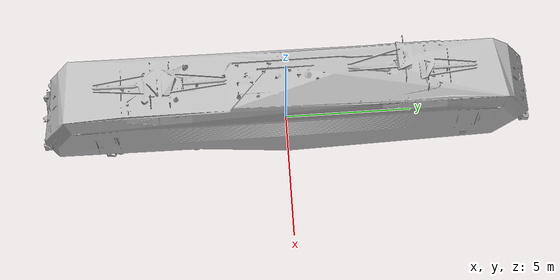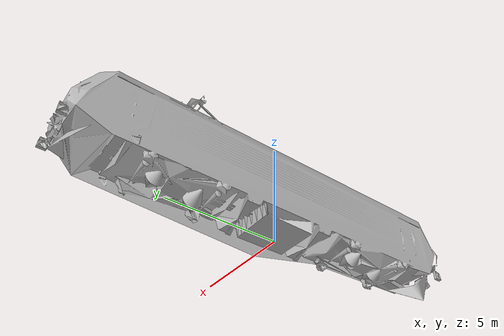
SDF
<?xml version="1.0" ?>
<sdf version="1.5">
  <model name="train_b">
    <static>true</static>
    <link name="train_b_link">
      <collision name="collision">
        <geometry>
          <mesh optimization="convex_hull">
            <uri>model://train_b/meshes/train_b.stl</uri>
          </mesh>
        </geometry>
      </collision>
      <visual name="visual">
        <geometry>
          <mesh>
            <uri>model://train_b/meshes/train_b.dae</uri>
          </mesh>
        </geometry>
      </visual>
    </link>
  </model>
</sdf>
